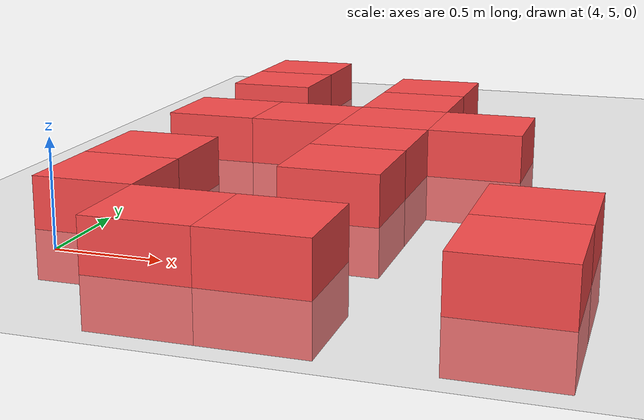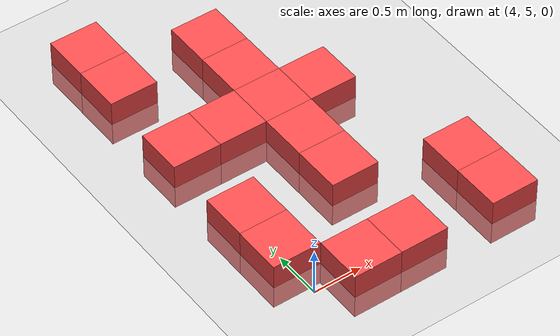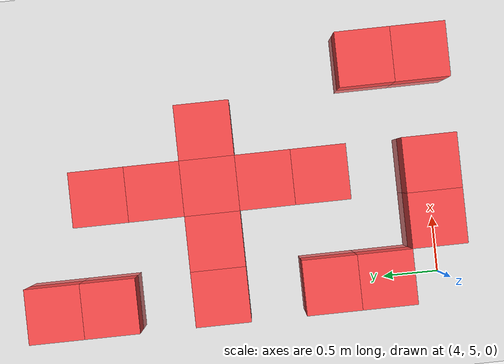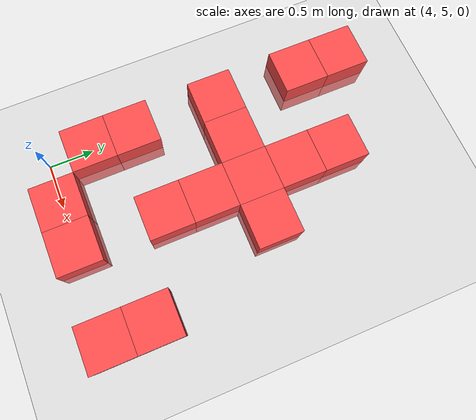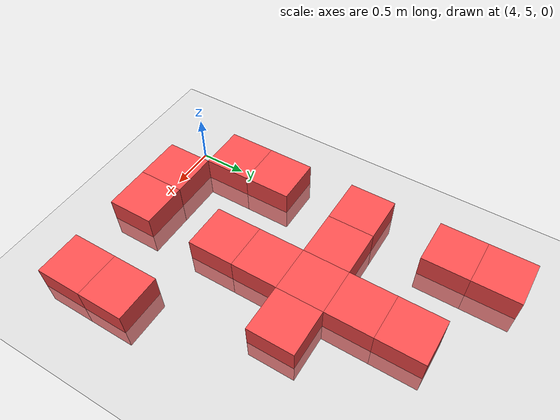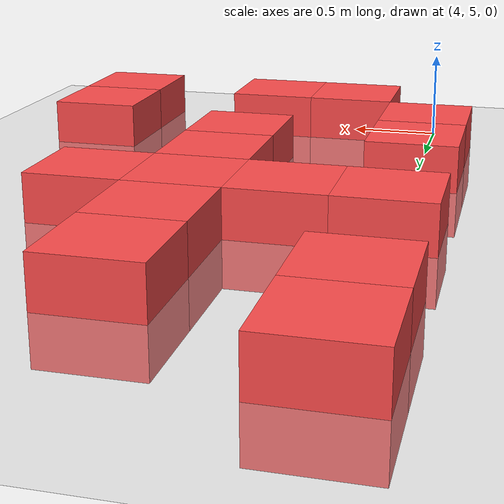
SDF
<sdf version="1.6">
 <world name="default">
  <model name="ground_plane">
   <static>1</static>
   <link name="link">
    <collision name="collision">
     <geometry><plane><normal>0 0 1</normal><size>100 100</size></plane></geometry>
     <surface><friction><ode><mu>100</mu><mu2>50</mu2></ode></friction></surface>
    </collision>
    <visual name="visual">
     <cast_shadows>0</cast_shadows>
     <geometry><plane><normal>0 0 1</normal><size>100 100</size></plane></geometry>
     <material>
      <script><uri>file://media/materials/scripts/gazebo.material</uri><name>Gazebo/Grey</name></script>
     </material>
    </visual>
   </link>
  </model>
  <model name="Box_Red_211">
   <link name="link_0">
    <inertial>
     <mass>1</mass>
     <inertia>
      <ixx>0.166667</ixx>
      <ixy>0</ixy>
      <ixz>0</ixz>
      <iyy>0.166667</iyy>
      <iyz>0</iyz>
      <izz>0.166667</izz>
     </inertia>
    </inertial>
    <visual name="visual">
     <geometry><box><size>0.5 0.5 0.5</size></box></geometry>
     <material>
      <lighting>1</lighting>
      <script><uri>file://media/materials/scripts/gazebo.material</uri><name>Gazebo/Grey</name></script>
      <ambient>1 0.3 0.3 1</ambient>
      <diffuse>0.7 0.7 0.7 1</diffuse>
      <specular>0.01 0.01 0.01 1</specular>
      <emissive>0 0 0 1</emissive>
      <shader type="vertex"><normal_map>__default__</normal_map></shader>
     </material>
    </visual>
    <collision name="collision">
     <geometry><box><size>0.5 0.5 0.5</size></box></geometry>
     <surface>
      <friction>
       <ode><mu>1</mu><mu2>1</mu2><fdir1>0 0 0</fdir1><slip1>0</slip1><slip2>0</slip2></ode>
       <torsional>
        <coefficient>1</coefficient>
        <patch_radius>0</patch_radius>
        <surface_radius>0</surface_radius>
        <use_patch_radius>1</use_patch_radius>
        <ode><slip>0</slip></ode>
       </torsional>
      </friction>
      <bounce><restitution_coefficient>0</restitution_coefficient><threshold>1e+06</threshold></bounce>
      <contact>
       <collide_without_contact>0</collide_without_contact>
       <collide_without_contact_bitmask>1</collide_without_contact_bitmask>
       <collide_bitmask>1</collide_bitmask>
       <ode>
        <soft_cfm>0</soft_cfm>
        <soft_erp>0.2</soft_erp>
        <kp>1e+13</kp>
        <kd>1</kd>
        <max_vel>0.01</max_vel>
        <min_depth>0</min_depth>
       </ode>
       <bullet>
        <split_impulse>1</split_impulse>
        <split_impulse_penetration_threshold>-0.01</split_impulse_penetration_threshold>
        <soft_cfm>0</soft_cfm>
        <soft_erp>0.2</soft_erp>
        <kp>1e+13</kp>
        <kd>1</kd>
       </bullet>
      </contact>
     </surface>
    </collision>
   </link>
   <static>0</static>
   <pose>4.000 5.500 0.000 0 0 0</pose>
  </model>
  <model name="Box_Red_212">
   <link name="link_0">
    <inertial>
     <mass>1</mass>
     <inertia>
      <ixx>0.166667</ixx>
      <ixy>0</ixy>
      <ixz>0</ixz>
      <iyy>0.166667</iyy>
      <iyz>0</iyz>
      <izz>0.166667</izz>
     </inertia>
    </inertial>
    <visual name="visual">
     <geometry><box><size>0.5 0.5 0.5</size></box></geometry>
     <material>
      <lighting>1</lighting>
      <script><uri>file://media/materials/scripts/gazebo.material</uri><name>Gazebo/Grey</name></script>
      <ambient>1 0.3 0.3 1</ambient>
      <diffuse>0.7 0.7 0.7 1</diffuse>
      <specular>0.01 0.01 0.01 1</specular>
      <emissive>0 0 0 1</emissive>
      <shader type="vertex"><normal_map>__default__</normal_map></shader>
     </material>
    </visual>
    <collision name="collision">
     <geometry><box><size>0.5 0.5 0.5</size></box></geometry>
     <surface>
      <friction>
       <ode><mu>1</mu><mu2>1</mu2><fdir1>0 0 0</fdir1><slip1>0</slip1><slip2>0</slip2></ode>
       <torsional>
        <coefficient>1</coefficient>
        <patch_radius>0</patch_radius>
        <surface_radius>0</surface_radius>
        <use_patch_radius>1</use_patch_radius>
        <ode><slip>0</slip></ode>
       </torsional>
      </friction>
      <bounce><restitution_coefficient>0</restitution_coefficient><threshold>1e+06</threshold></bounce>
      <contact>
       <collide_without_contact>0</collide_without_contact>
       <collide_without_contact_bitmask>1</collide_without_contact_bitmask>
       <collide_bitmask>1</collide_bitmask>
       <ode>
        <soft_cfm>0</soft_cfm>
        <soft_erp>0.2</soft_erp>
        <kp>1e+13</kp>
        <kd>1</kd>
        <max_vel>0.01</max_vel>
        <min_depth>0</min_depth>
       </ode>
       <bullet>
        <split_impulse>1</split_impulse>
        <split_impulse_penetration_threshold>-0.01</split_impulse_penetration_threshold>
        <soft_cfm>0</soft_cfm>
        <soft_erp>0.2</soft_erp>
        <kp>1e+13</kp>
        <kd>1</kd>
       </bullet>
      </contact>
     </surface>
    </collision>
   </link>
   <static>0</static>
   <pose>4.000 6.000 0.000 0 0 0</pose>
  </model>
  <model name="Box_Red_214">
   <link name="link_0">
    <inertial>
     <mass>1</mass>
     <inertia>
      <ixx>0.166667</ixx>
      <ixy>0</ixy>
      <ixz>0</ixz>
      <iyy>0.166667</iyy>
      <iyz>0</iyz>
      <izz>0.166667</izz>
     </inertia>
    </inertial>
    <visual name="visual">
     <geometry><box><size>0.5 0.5 0.5</size></box></geometry>
     <material>
      <lighting>1</lighting>
      <script><uri>file://media/materials/scripts/gazebo.material</uri><name>Gazebo/Grey</name></script>
      <ambient>1 0.3 0.3 1</ambient>
      <diffuse>0.7 0.7 0.7 1</diffuse>
      <specular>0.01 0.01 0.01 1</specular>
      <emissive>0 0 0 1</emissive>
      <shader type="vertex"><normal_map>__default__</normal_map></shader>
     </material>
    </visual>
    <collision name="collision">
     <geometry><box><size>0.5 0.5 0.5</size></box></geometry>
     <surface>
      <friction>
       <ode><mu>1</mu><mu2>1</mu2><fdir1>0 0 0</fdir1><slip1>0</slip1><slip2>0</slip2></ode>
       <torsional>
        <coefficient>1</coefficient>
        <patch_radius>0</patch_radius>
        <surface_radius>0</surface_radius>
        <use_patch_radius>1</use_patch_radius>
        <ode><slip>0</slip></ode>
       </torsional>
      </friction>
      <bounce><restitution_coefficient>0</restitution_coefficient><threshold>1e+06</threshold></bounce>
      <contact>
       <collide_without_contact>0</collide_without_contact>
       <collide_without_contact_bitmask>1</collide_without_contact_bitmask>
       <collide_bitmask>1</collide_bitmask>
       <ode>
        <soft_cfm>0</soft_cfm>
        <soft_erp>0.2</soft_erp>
        <kp>1e+13</kp>
        <kd>1</kd>
        <max_vel>0.01</max_vel>
        <min_depth>0</min_depth>
       </ode>
       <bullet>
        <split_impulse>1</split_impulse>
        <split_impulse_penetration_threshold>-0.01</split_impulse_penetration_threshold>
        <soft_cfm>0</soft_cfm>
        <soft_erp>0.2</soft_erp>
        <kp>1e+13</kp>
        <kd>1</kd>
       </bullet>
      </contact>
     </surface>
    </collision>
   </link>
   <static>0</static>
   <pose>4.000 7.000 0.000 0 0 0</pose>
  </model>
  <model name="Box_Red_216">
   <link name="link_0">
    <inertial>
     <mass>1</mass>
     <inertia>
      <ixx>0.166667</ixx>
      <ixy>0</ixy>
      <ixz>0</ixz>
      <iyy>0.166667</iyy>
      <iyz>0</iyz>
      <izz>0.166667</izz>
     </inertia>
    </inertial>
    <visual name="visual">
     <geometry><box><size>0.5 0.5 0.5</size></box></geometry>
     <material>
      <lighting>1</lighting>
      <script><uri>file://media/materials/scripts/gazebo.material</uri><name>Gazebo/Grey</name></script>
      <ambient>1 0.3 0.3 1</ambient>
      <diffuse>0.7 0.7 0.7 1</diffuse>
      <specular>0.01 0.01 0.01 1</specular>
      <emissive>0 0 0 1</emissive>
      <shader type="vertex"><normal_map>__default__</normal_map></shader>
     </material>
    </visual>
    <collision name="collision">
     <geometry><box><size>0.5 0.5 0.5</size></box></geometry>
     <surface>
      <friction>
       <ode><mu>1</mu><mu2>1</mu2><fdir1>0 0 0</fdir1><slip1>0</slip1><slip2>0</slip2></ode>
       <torsional>
        <coefficient>1</coefficient>
        <patch_radius>0</patch_radius>
        <surface_radius>0</surface_radius>
        <use_patch_radius>1</use_patch_radius>
        <ode><slip>0</slip></ode>
       </torsional>
      </friction>
      <bounce><restitution_coefficient>0</restitution_coefficient><threshold>1e+06</threshold></bounce>
      <contact>
       <collide_without_contact>0</collide_without_contact>
       <collide_without_contact_bitmask>1</collide_without_contact_bitmask>
       <collide_bitmask>1</collide_bitmask>
       <ode>
        <soft_cfm>0</soft_cfm>
        <soft_erp>0.2</soft_erp>
        <kp>1e+13</kp>
        <kd>1</kd>
        <max_vel>0.01</max_vel>
        <min_depth>0</min_depth>
       </ode>
       <bullet>
        <split_impulse>1</split_impulse>
        <split_impulse_penetration_threshold>-0.01</split_impulse_penetration_threshold>
        <soft_cfm>0</soft_cfm>
        <soft_erp>0.2</soft_erp>
        <kp>1e+13</kp>
        <kd>1</kd>
       </bullet>
      </contact>
     </surface>
    </collision>
   </link>
   <static>0</static>
   <pose>4.000 8.000 0.000 0 0 0</pose>
  </model>
  <model name="Box_Red_217">
   <link name="link_0">
    <inertial>
     <mass>1</mass>
     <inertia>
      <ixx>0.166667</ixx>
      <ixy>0</ixy>
      <ixz>0</ixz>
      <iyy>0.166667</iyy>
      <iyz>0</iyz>
      <izz>0.166667</izz>
     </inertia>
    </inertial>
    <visual name="visual">
     <geometry><box><size>0.5 0.5 0.5</size></box></geometry>
     <material>
      <lighting>1</lighting>
      <script><uri>file://media/materials/scripts/gazebo.material</uri><name>Gazebo/Grey</name></script>
      <ambient>1 0.3 0.3 1</ambient>
      <diffuse>0.7 0.7 0.7 1</diffuse>
      <specular>0.01 0.01 0.01 1</specular>
      <emissive>0 0 0 1</emissive>
      <shader type="vertex"><normal_map>__default__</normal_map></shader>
     </material>
    </visual>
    <collision name="collision">
     <geometry><box><size>0.5 0.5 0.5</size></box></geometry>
     <surface>
      <friction>
       <ode><mu>1</mu><mu2>1</mu2><fdir1>0 0 0</fdir1><slip1>0</slip1><slip2>0</slip2></ode>
       <torsional>
        <coefficient>1</coefficient>
        <patch_radius>0</patch_radius>
        <surface_radius>0</surface_radius>
        <use_patch_radius>1</use_patch_radius>
        <ode><slip>0</slip></ode>
       </torsional>
      </friction>
      <bounce><restitution_coefficient>0</restitution_coefficient><threshold>1e+06</threshold></bounce>
      <contact>
       <collide_without_contact>0</collide_without_contact>
       <collide_without_contact_bitmask>1</collide_without_contact_bitmask>
       <collide_bitmask>1</collide_bitmask>
       <ode>
        <soft_cfm>0</soft_cfm>
        <soft_erp>0.2</soft_erp>
        <kp>1e+13</kp>
        <kd>1</kd>
        <max_vel>0.01</max_vel>
        <min_depth>0</min_depth>
       </ode>
       <bullet>
        <split_impulse>1</split_impulse>
        <split_impulse_penetration_threshold>-0.01</split_impulse_penetration_threshold>
        <soft_cfm>0</soft_cfm>
        <soft_erp>0.2</soft_erp>
        <kp>1e+13</kp>
        <kd>1</kd>
       </bullet>
      </contact>
     </surface>
    </collision>
   </link>
   <static>0</static>
   <pose>4.000 8.500 0.000 0 0 0</pose>
  </model>
  <model name="Box_Red_235">
   <link name="link_0">
    <inertial>
     <mass>1</mass>
     <inertia>
      <ixx>0.166667</ixx>
      <ixy>0</ixy>
      <ixz>0</ixz>
      <iyy>0.166667</iyy>
      <iyz>0</iyz>
      <izz>0.166667</izz>
     </inertia>
    </inertial>
    <visual name="visual">
     <geometry><box><size>0.5 0.5 0.5</size></box></geometry>
     <material>
      <lighting>1</lighting>
      <script><uri>file://media/materials/scripts/gazebo.material</uri><name>Gazebo/Grey</name></script>
      <ambient>1 0.3 0.3 1</ambient>
      <diffuse>0.7 0.7 0.7 1</diffuse>
      <specular>0.01 0.01 0.01 1</specular>
      <emissive>0 0 0 1</emissive>
      <shader type="vertex"><normal_map>__default__</normal_map></shader>
     </material>
    </visual>
    <collision name="collision">
     <geometry><box><size>0.5 0.5 0.5</size></box></geometry>
     <surface>
      <friction>
       <ode><mu>1</mu><mu2>1</mu2><fdir1>0 0 0</fdir1><slip1>0</slip1><slip2>0</slip2></ode>
       <torsional>
        <coefficient>1</coefficient>
        <patch_radius>0</patch_radius>
        <surface_radius>0</surface_radius>
        <use_patch_radius>1</use_patch_radius>
        <ode><slip>0</slip></ode>
       </torsional>
      </friction>
      <bounce><restitution_coefficient>0</restitution_coefficient><threshold>1e+06</threshold></bounce>
      <contact>
       <collide_without_contact>0</collide_without_contact>
       <collide_without_contact_bitmask>1</collide_without_contact_bitmask>
       <collide_bitmask>1</collide_bitmask>
       <ode>
        <soft_cfm>0</soft_cfm>
        <soft_erp>0.2</soft_erp>
        <kp>1e+13</kp>
        <kd>1</kd>
        <max_vel>0.01</max_vel>
        <min_depth>0</min_depth>
       </ode>
       <bullet>
        <split_impulse>1</split_impulse>
        <split_impulse_penetration_threshold>-0.01</split_impulse_penetration_threshold>
        <soft_cfm>0</soft_cfm>
        <soft_erp>0.2</soft_erp>
        <kp>1e+13</kp>
        <kd>1</kd>
       </bullet>
      </contact>
     </surface>
    </collision>
   </link>
   <static>0</static>
   <pose>4.500 5.000 0.000 0 0 0</pose>
  </model>
  <model name="Box_Red_239">
   <link name="link_0">
    <inertial>
     <mass>1</mass>
     <inertia>
      <ixx>0.166667</ixx>
      <ixy>0</ixy>
      <ixz>0</ixz>
      <iyy>0.166667</iyy>
      <iyz>0</iyz>
      <izz>0.166667</izz>
     </inertia>
    </inertial>
    <visual name="visual">
     <geometry><box><size>0.5 0.5 0.5</size></box></geometry>
     <material>
      <lighting>1</lighting>
      <script><uri>file://media/materials/scripts/gazebo.material</uri><name>Gazebo/Grey</name></script>
      <ambient>1 0.3 0.3 1</ambient>
      <diffuse>0.7 0.7 0.7 1</diffuse>
      <specular>0.01 0.01 0.01 1</specular>
      <emissive>0 0 0 1</emissive>
      <shader type="vertex"><normal_map>__default__</normal_map></shader>
     </material>
    </visual>
    <collision name="collision">
     <geometry><box><size>0.5 0.5 0.5</size></box></geometry>
     <surface>
      <friction>
       <ode><mu>1</mu><mu2>1</mu2><fdir1>0 0 0</fdir1><slip1>0</slip1><slip2>0</slip2></ode>
       <torsional>
        <coefficient>1</coefficient>
        <patch_radius>0</patch_radius>
        <surface_radius>0</surface_radius>
        <use_patch_radius>1</use_patch_radius>
        <ode><slip>0</slip></ode>
       </torsional>
      </friction>
      <bounce><restitution_coefficient>0</restitution_coefficient><threshold>1e+06</threshold></bounce>
      <contact>
       <collide_without_contact>0</collide_without_contact>
       <collide_without_contact_bitmask>1</collide_without_contact_bitmask>
       <collide_bitmask>1</collide_bitmask>
       <ode>
        <soft_cfm>0</soft_cfm>
        <soft_erp>0.2</soft_erp>
        <kp>1e+13</kp>
        <kd>1</kd>
        <max_vel>0.01</max_vel>
        <min_depth>0</min_depth>
       </ode>
       <bullet>
        <split_impulse>1</split_impulse>
        <split_impulse_penetration_threshold>-0.01</split_impulse_penetration_threshold>
        <soft_cfm>0</soft_cfm>
        <soft_erp>0.2</soft_erp>
        <kp>1e+13</kp>
        <kd>1</kd>
       </bullet>
      </contact>
     </surface>
    </collision>
   </link>
   <static>0</static>
   <pose>4.500 7.000 0.000 0 0 0</pose>
  </model>
  <model name="Box_Red_260">
   <link name="link_0">
    <inertial>
     <mass>1</mass>
     <inertia>
      <ixx>0.166667</ixx>
      <ixy>0</ixy>
      <ixz>0</ixz>
      <iyy>0.166667</iyy>
      <iyz>0</iyz>
      <izz>0.166667</izz>
     </inertia>
    </inertial>
    <visual name="visual">
     <geometry><box><size>0.5 0.5 0.5</size></box></geometry>
     <material>
      <lighting>1</lighting>
      <script><uri>file://media/materials/scripts/gazebo.material</uri><name>Gazebo/Grey</name></script>
      <ambient>1 0.3 0.3 1</ambient>
      <diffuse>0.7 0.7 0.7 1</diffuse>
      <specular>0.01 0.01 0.01 1</specular>
      <emissive>0 0 0 1</emissive>
      <shader type="vertex"><normal_map>__default__</normal_map></shader>
     </material>
    </visual>
    <collision name="collision">
     <geometry><box><size>0.5 0.5 0.5</size></box></geometry>
     <surface>
      <friction>
       <ode><mu>1</mu><mu2>1</mu2><fdir1>0 0 0</fdir1><slip1>0</slip1><slip2>0</slip2></ode>
       <torsional>
        <coefficient>1</coefficient>
        <patch_radius>0</patch_radius>
        <surface_radius>0</surface_radius>
        <use_patch_radius>1</use_patch_radius>
        <ode><slip>0</slip></ode>
       </torsional>
      </friction>
      <bounce><restitution_coefficient>0</restitution_coefficient><threshold>1e+06</threshold></bounce>
      <contact>
       <collide_without_contact>0</collide_without_contact>
       <collide_without_contact_bitmask>1</collide_without_contact_bitmask>
       <collide_bitmask>1</collide_bitmask>
       <ode>
        <soft_cfm>0</soft_cfm>
        <soft_erp>0.2</soft_erp>
        <kp>1e+13</kp>
        <kd>1</kd>
        <max_vel>0.01</max_vel>
        <min_depth>0</min_depth>
       </ode>
       <bullet>
        <split_impulse>1</split_impulse>
        <split_impulse_penetration_threshold>-0.01</split_impulse_penetration_threshold>
        <soft_cfm>0</soft_cfm>
        <soft_erp>0.2</soft_erp>
        <kp>1e+13</kp>
        <kd>1</kd>
       </bullet>
      </contact>
     </surface>
    </collision>
   </link>
   <static>0</static>
   <pose>5.000 5.000 0.000 0 0 0</pose>
  </model>
  <model name="Box_Red_262">
   <link name="link_0">
    <inertial>
     <mass>1</mass>
     <inertia>
      <ixx>0.166667</ixx>
      <ixy>0</ixy>
      <ixz>0</ixz>
      <iyy>0.166667</iyy>
      <iyz>0</iyz>
      <izz>0.166667</izz>
     </inertia>
    </inertial>
    <visual name="visual">
     <geometry><box><size>0.5 0.5 0.5</size></box></geometry>
     <material>
      <lighting>1</lighting>
      <script><uri>file://media/materials/scripts/gazebo.material</uri><name>Gazebo/Grey</name></script>
      <ambient>1 0.3 0.3 1</ambient>
      <diffuse>0.7 0.7 0.7 1</diffuse>
      <specular>0.01 0.01 0.01 1</specular>
      <emissive>0 0 0 1</emissive>
      <shader type="vertex"><normal_map>__default__</normal_map></shader>
     </material>
    </visual>
    <collision name="collision">
     <geometry><box><size>0.5 0.5 0.5</size></box></geometry>
     <surface>
      <friction>
       <ode><mu>1</mu><mu2>1</mu2><fdir1>0 0 0</fdir1><slip1>0</slip1><slip2>0</slip2></ode>
       <torsional>
        <coefficient>1</coefficient>
        <patch_radius>0</patch_radius>
        <surface_radius>0</surface_radius>
        <use_patch_radius>1</use_patch_radius>
        <ode><slip>0</slip></ode>
       </torsional>
      </friction>
      <bounce><restitution_coefficient>0</restitution_coefficient><threshold>1e+06</threshold></bounce>
      <contact>
       <collide_without_contact>0</collide_without_contact>
       <collide_without_contact_bitmask>1</collide_without_contact_bitmask>
       <collide_bitmask>1</collide_bitmask>
       <ode>
        <soft_cfm>0</soft_cfm>
        <soft_erp>0.2</soft_erp>
        <kp>1e+13</kp>
        <kd>1</kd>
        <max_vel>0.01</max_vel>
        <min_depth>0</min_depth>
       </ode>
       <bullet>
        <split_impulse>1</split_impulse>
        <split_impulse_penetration_threshold>-0.01</split_impulse_penetration_threshold>
        <soft_cfm>0</soft_cfm>
        <soft_erp>0.2</soft_erp>
        <kp>1e+13</kp>
        <kd>1</kd>
       </bullet>
      </contact>
     </surface>
    </collision>
   </link>
   <static>0</static>
   <pose>5.000 6.000 0.000 0 0 0</pose>
  </model>
  <model name="Box_Red_263">
   <link name="link_0">
    <inertial>
     <mass>1</mass>
     <inertia>
      <ixx>0.166667</ixx>
      <ixy>0</ixy>
      <ixz>0</ixz>
      <iyy>0.166667</iyy>
      <iyz>0</iyz>
      <izz>0.166667</izz>
     </inertia>
    </inertial>
    <visual name="visual">
     <geometry><box><size>0.5 0.5 0.5</size></box></geometry>
     <material>
      <lighting>1</lighting>
      <script><uri>file://media/materials/scripts/gazebo.material</uri><name>Gazebo/Grey</name></script>
      <ambient>1 0.3 0.3 1</ambient>
      <diffuse>0.7 0.7 0.7 1</diffuse>
      <specular>0.01 0.01 0.01 1</specular>
      <emissive>0 0 0 1</emissive>
      <shader type="vertex"><normal_map>__default__</normal_map></shader>
     </material>
    </visual>
    <collision name="collision">
     <geometry><box><size>0.5 0.5 0.5</size></box></geometry>
     <surface>
      <friction>
       <ode><mu>1</mu><mu2>1</mu2><fdir1>0 0 0</fdir1><slip1>0</slip1><slip2>0</slip2></ode>
       <torsional>
        <coefficient>1</coefficient>
        <patch_radius>0</patch_radius>
        <surface_radius>0</surface_radius>
        <use_patch_radius>1</use_patch_radius>
        <ode><slip>0</slip></ode>
       </torsional>
      </friction>
      <bounce><restitution_coefficient>0</restitution_coefficient><threshold>1e+06</threshold></bounce>
      <contact>
       <collide_without_contact>0</collide_without_contact>
       <collide_without_contact_bitmask>1</collide_without_contact_bitmask>
       <collide_bitmask>1</collide_bitmask>
       <ode>
        <soft_cfm>0</soft_cfm>
        <soft_erp>0.2</soft_erp>
        <kp>1e+13</kp>
        <kd>1</kd>
        <max_vel>0.01</max_vel>
        <min_depth>0</min_depth>
       </ode>
       <bullet>
        <split_impulse>1</split_impulse>
        <split_impulse_penetration_threshold>-0.01</split_impulse_penetration_threshold>
        <soft_cfm>0</soft_cfm>
        <soft_erp>0.2</soft_erp>
        <kp>1e+13</kp>
        <kd>1</kd>
       </bullet>
      </contact>
     </surface>
    </collision>
   </link>
   <static>0</static>
   <pose>5.000 6.500 0.000 0 0 0</pose>
  </model>
  <model name="Box_Red_264">
   <link name="link_0">
    <inertial>
     <mass>1</mass>
     <inertia>
      <ixx>0.166667</ixx>
      <ixy>0</ixy>
      <ixz>0</ixz>
      <iyy>0.166667</iyy>
      <iyz>0</iyz>
      <izz>0.166667</izz>
     </inertia>
    </inertial>
    <visual name="visual">
     <geometry><box><size>0.5 0.5 0.5</size></box></geometry>
     <material>
      <lighting>1</lighting>
      <script><uri>file://media/materials/scripts/gazebo.material</uri><name>Gazebo/Grey</name></script>
      <ambient>1 0.3 0.3 1</ambient>
      <diffuse>0.7 0.7 0.7 1</diffuse>
      <specular>0.01 0.01 0.01 1</specular>
      <emissive>0 0 0 1</emissive>
      <shader type="vertex"><normal_map>__default__</normal_map></shader>
     </material>
    </visual>
    <collision name="collision">
     <geometry><box><size>0.5 0.5 0.5</size></box></geometry>
     <surface>
      <friction>
       <ode><mu>1</mu><mu2>1</mu2><fdir1>0 0 0</fdir1><slip1>0</slip1><slip2>0</slip2></ode>
       <torsional>
        <coefficient>1</coefficient>
        <patch_radius>0</patch_radius>
        <surface_radius>0</surface_radius>
        <use_patch_radius>1</use_patch_radius>
        <ode><slip>0</slip></ode>
       </torsional>
      </friction>
      <bounce><restitution_coefficient>0</restitution_coefficient><threshold>1e+06</threshold></bounce>
      <contact>
       <collide_without_contact>0</collide_without_contact>
       <collide_without_contact_bitmask>1</collide_without_contact_bitmask>
       <collide_bitmask>1</collide_bitmask>
       <ode>
        <soft_cfm>0</soft_cfm>
        <soft_erp>0.2</soft_erp>
        <kp>1e+13</kp>
        <kd>1</kd>
        <max_vel>0.01</max_vel>
        <min_depth>0</min_depth>
       </ode>
       <bullet>
        <split_impulse>1</split_impulse>
        <split_impulse_penetration_threshold>-0.01</split_impulse_penetration_threshold>
        <soft_cfm>0</soft_cfm>
        <soft_erp>0.2</soft_erp>
        <kp>1e+13</kp>
        <kd>1</kd>
       </bullet>
      </contact>
     </surface>
    </collision>
   </link>
   <static>0</static>
   <pose>5.000 7.000 0.000 0 0 0</pose>
  </model>
  <model name="Box_Red_265">
   <link name="link_0">
    <inertial>
     <mass>1</mass>
     <inertia>
      <ixx>0.166667</ixx>
      <ixy>0</ixy>
      <ixz>0</ixz>
      <iyy>0.166667</iyy>
      <iyz>0</iyz>
      <izz>0.166667</izz>
     </inertia>
    </inertial>
    <visual name="visual">
     <geometry><box><size>0.5 0.5 0.5</size></box></geometry>
     <material>
      <lighting>1</lighting>
      <script><uri>file://media/materials/scripts/gazebo.material</uri><name>Gazebo/Grey</name></script>
      <ambient>1 0.3 0.3 1</ambient>
      <diffuse>0.7 0.7 0.7 1</diffuse>
      <specular>0.01 0.01 0.01 1</specular>
      <emissive>0 0 0 1</emissive>
      <shader type="vertex"><normal_map>__default__</normal_map></shader>
     </material>
    </visual>
    <collision name="collision">
     <geometry><box><size>0.5 0.5 0.5</size></box></geometry>
     <surface>
      <friction>
       <ode><mu>1</mu><mu2>1</mu2><fdir1>0 0 0</fdir1><slip1>0</slip1><slip2>0</slip2></ode>
       <torsional>
        <coefficient>1</coefficient>
        <patch_radius>0</patch_radius>
        <surface_radius>0</surface_radius>
        <use_patch_radius>1</use_patch_radius>
        <ode><slip>0</slip></ode>
       </torsional>
      </friction>
      <bounce><restitution_coefficient>0</restitution_coefficient><threshold>1e+06</threshold></bounce>
      <contact>
       <collide_without_contact>0</collide_without_contact>
       <collide_without_contact_bitmask>1</collide_without_contact_bitmask>
       <collide_bitmask>1</collide_bitmask>
       <ode>
        <soft_cfm>0</soft_cfm>
        <soft_erp>0.2</soft_erp>
        <kp>1e+13</kp>
        <kd>1</kd>
        <max_vel>0.01</max_vel>
        <min_depth>0</min_depth>
       </ode>
       <bullet>
        <split_impulse>1</split_impulse>
        <split_impulse_penetration_threshold>-0.01</split_impulse_penetration_threshold>
        <soft_cfm>0</soft_cfm>
        <soft_erp>0.2</soft_erp>
        <kp>1e+13</kp>
        <kd>1</kd>
       </bullet>
      </contact>
     </surface>
    </collision>
   </link>
   <static>0</static>
   <pose>5.000 7.500 0.000 0 0 0</pose>
  </model>
  <model name="Box_Red_266">
   <link name="link_0">
    <inertial>
     <mass>1</mass>
     <inertia>
      <ixx>0.166667</ixx>
      <ixy>0</ixy>
      <ixz>0</ixz>
      <iyy>0.166667</iyy>
      <iyz>0</iyz>
      <izz>0.166667</izz>
     </inertia>
    </inertial>
    <visual name="visual">
     <geometry><box><size>0.5 0.5 0.5</size></box></geometry>
     <material>
      <lighting>1</lighting>
      <script><uri>file://media/materials/scripts/gazebo.material</uri><name>Gazebo/Grey</name></script>
      <ambient>1 0.3 0.3 1</ambient>
      <diffuse>0.7 0.7 0.7 1</diffuse>
      <specular>0.01 0.01 0.01 1</specular>
      <emissive>0 0 0 1</emissive>
      <shader type="vertex"><normal_map>__default__</normal_map></shader>
     </material>
    </visual>
    <collision name="collision">
     <geometry><box><size>0.5 0.5 0.5</size></box></geometry>
     <surface>
      <friction>
       <ode><mu>1</mu><mu2>1</mu2><fdir1>0 0 0</fdir1><slip1>0</slip1><slip2>0</slip2></ode>
       <torsional>
        <coefficient>1</coefficient>
        <patch_radius>0</patch_radius>
        <surface_radius>0</surface_radius>
        <use_patch_radius>1</use_patch_radius>
        <ode><slip>0</slip></ode>
       </torsional>
      </friction>
      <bounce><restitution_coefficient>0</restitution_coefficient><threshold>1e+06</threshold></bounce>
      <contact>
       <collide_without_contact>0</collide_without_contact>
       <collide_without_contact_bitmask>1</collide_without_contact_bitmask>
       <collide_bitmask>1</collide_bitmask>
       <ode>
        <soft_cfm>0</soft_cfm>
        <soft_erp>0.2</soft_erp>
        <kp>1e+13</kp>
        <kd>1</kd>
        <max_vel>0.01</max_vel>
        <min_depth>0</min_depth>
       </ode>
       <bullet>
        <split_impulse>1</split_impulse>
        <split_impulse_penetration_threshold>-0.01</split_impulse_penetration_threshold>
        <soft_cfm>0</soft_cfm>
        <soft_erp>0.2</soft_erp>
        <kp>1e+13</kp>
        <kd>1</kd>
       </bullet>
      </contact>
     </surface>
    </collision>
   </link>
   <static>0</static>
   <pose>5.000 8.000 0.000 0 0 0</pose>
  </model>
  <model name="Box_Red_289">
   <link name="link_0">
    <inertial>
     <mass>1</mass>
     <inertia>
      <ixx>0.166667</ixx>
      <ixy>0</ixy>
      <ixz>0</ixz>
      <iyy>0.166667</iyy>
      <iyz>0</iyz>
      <izz>0.166667</izz>
     </inertia>
    </inertial>
    <visual name="visual">
     <geometry><box><size>0.5 0.5 0.5</size></box></geometry>
     <material>
      <lighting>1</lighting>
      <script><uri>file://media/materials/scripts/gazebo.material</uri><name>Gazebo/Grey</name></script>
      <ambient>1 0.3 0.3 1</ambient>
      <diffuse>0.7 0.7 0.7 1</diffuse>
      <specular>0.01 0.01 0.01 1</specular>
      <emissive>0 0 0 1</emissive>
      <shader type="vertex"><normal_map>__default__</normal_map></shader>
     </material>
    </visual>
    <collision name="collision">
     <geometry><box><size>0.5 0.5 0.5</size></box></geometry>
     <surface>
      <friction>
       <ode><mu>1</mu><mu2>1</mu2><fdir1>0 0 0</fdir1><slip1>0</slip1><slip2>0</slip2></ode>
       <torsional>
        <coefficient>1</coefficient>
        <patch_radius>0</patch_radius>
        <surface_radius>0</surface_radius>
        <use_patch_radius>1</use_patch_radius>
        <ode><slip>0</slip></ode>
       </torsional>
      </friction>
      <bounce><restitution_coefficient>0</restitution_coefficient><threshold>1e+06</threshold></bounce>
      <contact>
       <collide_without_contact>0</collide_without_contact>
       <collide_without_contact_bitmask>1</collide_without_contact_bitmask>
       <collide_bitmask>1</collide_bitmask>
       <ode>
        <soft_cfm>0</soft_cfm>
        <soft_erp>0.2</soft_erp>
        <kp>1e+13</kp>
        <kd>1</kd>
        <max_vel>0.01</max_vel>
        <min_depth>0</min_depth>
       </ode>
       <bullet>
        <split_impulse>1</split_impulse>
        <split_impulse_penetration_threshold>-0.01</split_impulse_penetration_threshold>
        <soft_cfm>0</soft_cfm>
        <soft_erp>0.2</soft_erp>
        <kp>1e+13</kp>
        <kd>1</kd>
       </bullet>
      </contact>
     </surface>
    </collision>
   </link>
   <static>0</static>
   <pose>5.500 7.000 0.000 0 0 0</pose>
  </model>
  <model name="Box_Red_310">
   <link name="link_0">
    <inertial>
     <mass>1</mass>
     <inertia>
      <ixx>0.166667</ixx>
      <ixy>0</ixy>
      <ixz>0</ixz>
      <iyy>0.166667</iyy>
      <iyz>0</iyz>
      <izz>0.166667</izz>
     </inertia>
    </inertial>
    <visual name="visual">
     <geometry><box><size>0.5 0.5 0.5</size></box></geometry>
     <material>
      <lighting>1</lighting>
      <script><uri>file://media/materials/scripts/gazebo.material</uri><name>Gazebo/Grey</name></script>
      <ambient>1 0.3 0.3 1</ambient>
      <diffuse>0.7 0.7 0.7 1</diffuse>
      <specular>0.01 0.01 0.01 1</specular>
      <emissive>0 0 0 1</emissive>
      <shader type="vertex"><normal_map>__default__</normal_map></shader>
     </material>
    </visual>
    <collision name="collision">
     <geometry><box><size>0.5 0.5 0.5</size></box></geometry>
     <surface>
      <friction>
       <ode><mu>1</mu><mu2>1</mu2><fdir1>0 0 0</fdir1><slip1>0</slip1><slip2>0</slip2></ode>
       <torsional>
        <coefficient>1</coefficient>
        <patch_radius>0</patch_radius>
        <surface_radius>0</surface_radius>
        <use_patch_radius>1</use_patch_radius>
        <ode><slip>0</slip></ode>
       </torsional>
      </friction>
      <bounce><restitution_coefficient>0</restitution_coefficient><threshold>1e+06</threshold></bounce>
      <contact>
       <collide_without_contact>0</collide_without_contact>
       <collide_without_contact_bitmask>1</collide_without_contact_bitmask>
       <collide_bitmask>1</collide_bitmask>
       <ode>
        <soft_cfm>0</soft_cfm>
        <soft_erp>0.2</soft_erp>
        <kp>1e+13</kp>
        <kd>1</kd>
        <max_vel>0.01</max_vel>
        <min_depth>0</min_depth>
       </ode>
       <bullet>
        <split_impulse>1</split_impulse>
        <split_impulse_penetration_threshold>-0.01</split_impulse_penetration_threshold>
        <soft_cfm>0</soft_cfm>
        <soft_erp>0.2</soft_erp>
        <kp>1e+13</kp>
        <kd>1</kd>
       </bullet>
      </contact>
     </surface>
    </collision>
   </link>
   <static>0</static>
   <pose>6.000 5.000 0.000 0 0 0</pose>
  </model>
  <model name="Box_Red_311">
   <link name="link_0">
    <inertial>
     <mass>1</mass>
     <inertia>
      <ixx>0.166667</ixx>
      <ixy>0</ixy>
      <ixz>0</ixz>
      <iyy>0.166667</iyy>
      <iyz>0</iyz>
      <izz>0.166667</izz>
     </inertia>
    </inertial>
    <visual name="visual">
     <geometry><box><size>0.5 0.5 0.5</size></box></geometry>
     <material>
      <lighting>1</lighting>
      <script><uri>file://media/materials/scripts/gazebo.material</uri><name>Gazebo/Grey</name></script>
      <ambient>1 0.3 0.3 1</ambient>
      <diffuse>0.7 0.7 0.7 1</diffuse>
      <specular>0.01 0.01 0.01 1</specular>
      <emissive>0 0 0 1</emissive>
      <shader type="vertex"><normal_map>__default__</normal_map></shader>
     </material>
    </visual>
    <collision name="collision">
     <geometry><box><size>0.5 0.5 0.5</size></box></geometry>
     <surface>
      <friction>
       <ode><mu>1</mu><mu2>1</mu2><fdir1>0 0 0</fdir1><slip1>0</slip1><slip2>0</slip2></ode>
       <torsional>
        <coefficient>1</coefficient>
        <patch_radius>0</patch_radius>
        <surface_radius>0</surface_radius>
        <use_patch_radius>1</use_patch_radius>
        <ode><slip>0</slip></ode>
       </torsional>
      </friction>
      <bounce><restitution_coefficient>0</restitution_coefficient><threshold>1e+06</threshold></bounce>
      <contact>
       <collide_without_contact>0</collide_without_contact>
       <collide_without_contact_bitmask>1</collide_without_contact_bitmask>
       <collide_bitmask>1</collide_bitmask>
       <ode>
        <soft_cfm>0</soft_cfm>
        <soft_erp>0.2</soft_erp>
        <kp>1e+13</kp>
        <kd>1</kd>
        <max_vel>0.01</max_vel>
        <min_depth>0</min_depth>
       </ode>
       <bullet>
        <split_impulse>1</split_impulse>
        <split_impulse_penetration_threshold>-0.01</split_impulse_penetration_threshold>
        <soft_cfm>0</soft_cfm>
        <soft_erp>0.2</soft_erp>
        <kp>1e+13</kp>
        <kd>1</kd>
       </bullet>
      </contact>
     </surface>
    </collision>
   </link>
   <static>0</static>
   <pose>6.000 5.500 0.000 0 0 0</pose>
  </model>
 </world>
</sdf>
